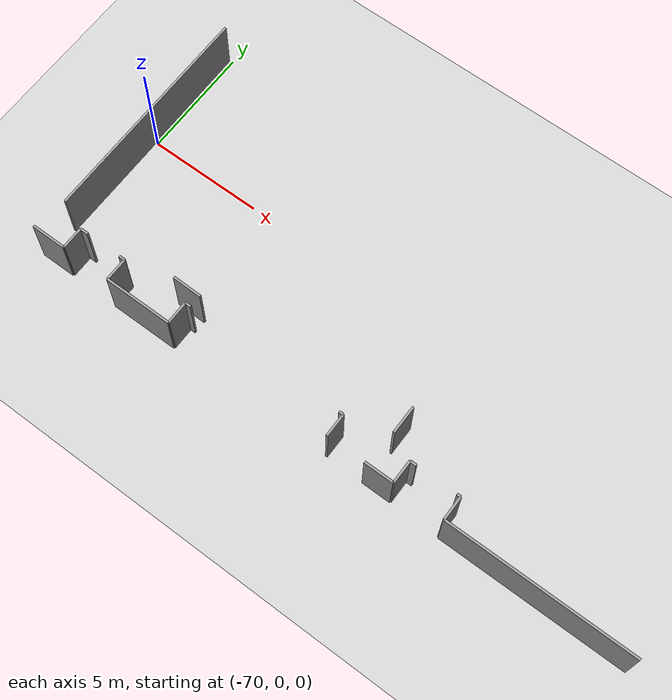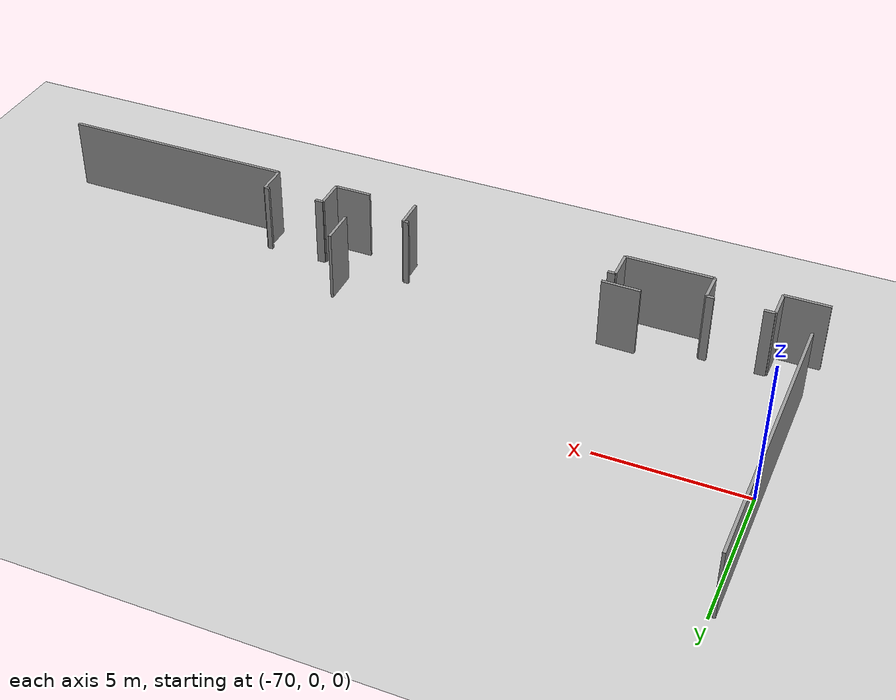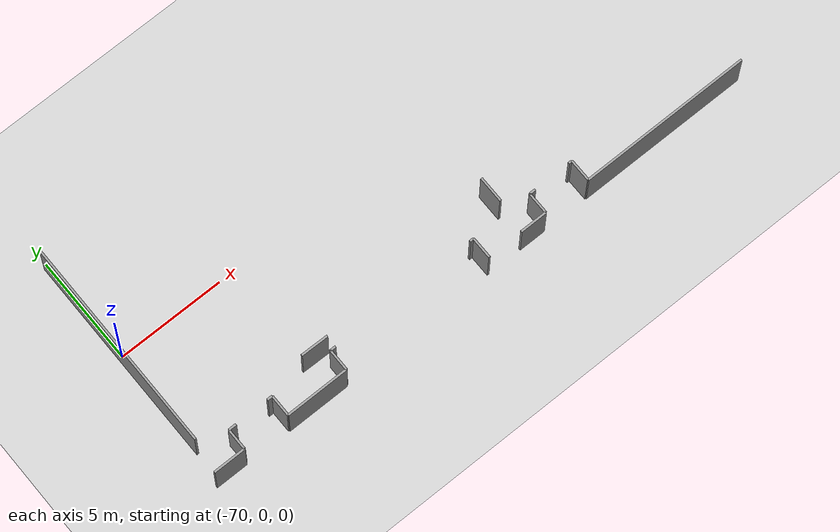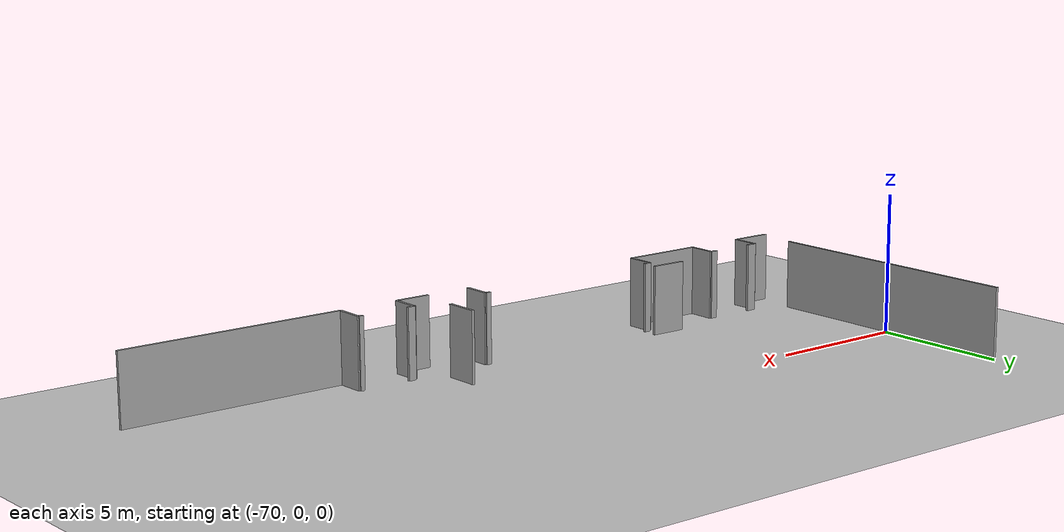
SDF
<sdf version="1.6">
 <world name="default">
  <model name="ground_plane">
   <static>1</static>
   <link name="link">
    <collision name="collision">
     <geometry><plane><normal>0 0 1</normal><size>100 100</size></plane></geometry>
     <surface><friction><ode><mu>100</mu><mu2>50</mu2></ode></friction></surface>
    </collision>
    <visual name="visual">
     <cast_shadows>0</cast_shadows>
     <geometry><plane><normal>0 0 1</normal><size>100 100</size></plane></geometry>
     <material>
      <script><uri>file://media/materials/scripts/gazebo.material</uri><name>Gazebo/Grey</name></script>
     </material>
    </visual>
   </link>
  </model>
  <model name="50055639">
   <static>1</static>
   <link name="Wall_0">
    <collision name="Wall_0_Collision">
     <geometry><box><size>9.98781401135 0.1 2.5</size></box></geometry>
     <pose>4.99390700567 0 1.25 0 0 0</pose>
    </collision>
    <visual name="Wall_0_Visual">
     <pose>4.99390700567 0 1.25 0 0 0</pose>
     <geometry><box><size>9.98781401135 0.1 2.5</size></box></geometry>
     <material>
      <script><uri>file://media/materials/scripts/gazebo.material</uri><name>Gazebo/Grey</name></script>
      <ambient>1 1 1 1</ambient>
     </material>
    </visual>
    <pose>0.262633442923 -25.9998730626 0 0 0 1.57079632679</pose>
   </link>
   <link name="Wall_15">
    <collision name="Wall_15_Collision">
     <geometry><box><size>1.30010702863 0.1 2.5</size></box></geometry>
     <pose>0.650053514316 0 1.25 0 0 0</pose>
    </collision>
    <visual name="Wall_15_Visual">
     <pose>0.650053514316 0 1.25 0 0 0</pose>
     <geometry><box><size>1.30010702863 0.1 2.5</size></box></geometry>
     <material>
      <script><uri>file://media/materials/scripts/gazebo.material</uri><name>Gazebo/Grey</name></script>
      <ambient>1 1 1 1</ambient>
     </material>
    </visual>
    <pose>6.96746594905 -25.9921298823 0 0 0 3.12684906813</pose>
   </link>
   <link name="Wall_16">
    <collision name="Wall_16_Collision">
     <geometry><box><size>1.21859886518 0.1 2.5</size></box></geometry>
     <pose>0.60929943259 0 1.25 0 0 0</pose>
    </collision>
    <visual name="Wall_16_Visual">
     <pose>0.60929943259 0 1.25 0 0 0</pose>
     <geometry><box><size>1.21859886518 0.1 2.5</size></box></geometry>
     <material>
      <script><uri>file://media/materials/scripts/gazebo.material</uri><name>Gazebo/Grey</name></script>
      <ambient>1 1 1 1</ambient>
     </material>
    </visual>
    <pose>15.9090620597 -25.9954302543 0 0 0 1.57079632679</pose>
   </link>
   <link name="Wall_26">
    <collision name="Wall_26_Collision">
     <geometry><box><size>1.52248695718 0.1 2.5</size></box></geometry>
     <pose>0.761243478592 0 1.25 0 0 0</pose>
    </collision>
    <visual name="Wall_26_Visual">
     <pose>0.761243478592 0 1.25 0 0 0</pose>
     <geometry><box><size>1.52248695718 0.1 2.5</size></box></geometry>
     <material>
      <script><uri>file://media/materials/scripts/gazebo.material</uri><name>Gazebo/Grey</name></script>
      <ambient>1 1 1 1</ambient>
     </material>
    </visual>
    <pose>0.0 -27.5255334543 0 0 0 0.0</pose>
   </link>
   <link name="Wall_27">
    <collision name="Wall_27_Collision">
     <geometry><box><size>0.987699767705 0.1 2.5</size></box></geometry>
     <pose>0.493849883852 0 1.25 0 0 0</pose>
    </collision>
    <visual name="Wall_27_Visual">
     <pose>0.493849883852 0 1.25 0 0 0</pose>
     <geometry><box><size>0.987699767705 0.1 2.5</size></box></geometry>
     <material>
      <script><uri>file://media/materials/scripts/gazebo.material</uri><name>Gazebo/Grey</name></script>
      <ambient>1 1 1 1</ambient>
     </material>
    </visual>
    <pose>1.52248695718 -27.5255334543 0 0 0 1.57079632679</pose>
   </link>
   <link name="Wall_28">
    <collision name="Wall_28_Collision">
     <geometry><box><size>0.362279287627 0.1 2.5</size></box></geometry>
     <pose>0.181139643814 0 1.25 0 0 0</pose>
    </collision>
    <visual name="Wall_28_Visual">
     <pose>0.181139643814 0 1.25 0 0 0</pose>
     <geometry><box><size>0.362279287627 0.1 2.5</size></box></geometry>
     <material>
      <script><uri>file://media/materials/scripts/gazebo.material</uri><name>Gazebo/Grey</name></script>
      <ambient>1 1 1 1</ambient>
     </material>
    </visual>
    <pose>1.52248695718 -26.5378336866 0 0 0 0.0</pose>
   </link>
   <link name="Wall_29">
    <collision name="Wall_29_Collision">
     <geometry><box><size>0.256286573833 0.1 2.5</size></box></geometry>
     <pose>0.128143286917 0 1.25 0 0 0</pose>
    </collision>
    <visual name="Wall_29_Visual">
     <pose>0.128143286917 0 1.25 0 0 0</pose>
     <geometry><box><size>0.256286573833 0.1 2.5</size></box></geometry>
     <material>
      <script><uri>file://media/materials/scripts/gazebo.material</uri><name>Gazebo/Grey</name></script>
      <ambient>1 1 1 1</ambient>
     </material>
    </visual>
    <pose>3.46196321355 -26.5378336866 0 0 0 0.0</pose>
   </link>
   <link name="Wall_30">
    <collision name="Wall_30_Collision">
     <geometry><box><size>1.0044555021 0.1 2.5</size></box></geometry>
     <pose>0.50222775105 0 1.25 0 0 0</pose>
    </collision>
    <visual name="Wall_30_Visual">
     <pose>0.50222775105 0 1.25 0 0 0</pose>
     <geometry><box><size>1.0044555021 0.1 2.5</size></box></geometry>
     <material>
      <script><uri>file://media/materials/scripts/gazebo.material</uri><name>Gazebo/Grey</name></script>
      <ambient>1 1 1 1</ambient>
     </material>
    </visual>
    <pose>3.71824978738 -26.5378336866 0 0 0 -1.57079632679</pose>
   </link>
   <link name="Wall_31">
    <collision name="Wall_31_Collision">
     <geometry><box><size>2.96868454791 0.1 2.5</size></box></geometry>
     <pose>1.48434227396 0 1.25 0 0 0</pose>
    </collision>
    <visual name="Wall_31_Visual">
     <pose>1.48434227396 0 1.25 0 0 0</pose>
     <geometry><box><size>2.96868454791 0.1 2.5</size></box></geometry>
     <material>
      <script><uri>file://media/materials/scripts/gazebo.material</uri><name>Gazebo/Grey</name></script>
      <ambient>1 1 1 1</ambient>
     </material>
    </visual>
    <pose>3.71824978738 -27.5422891887 0 0 0 0.0</pose>
   </link>
   <link name="Wall_32">
    <collision name="Wall_32_Collision">
     <geometry><box><size>1.00344000305 0.1 2.5</size></box></geometry>
     <pose>0.501720001523 0 1.25 0 0 0</pose>
    </collision>
    <visual name="Wall_32_Visual">
     <pose>0.501720001523 0 1.25 0 0 0</pose>
     <geometry><box><size>1.00344000305 0.1 2.5</size></box></geometry>
     <material>
      <script><uri>file://media/materials/scripts/gazebo.material</uri><name>Gazebo/Grey</name></script>
      <ambient>1 1 1 1</ambient>
     </material>
    </visual>
    <pose>6.68693433529 -27.5422891887 0 0 0 1.57079632679</pose>
   </link>
   <link name="Wall_33">
    <collision name="Wall_33_Collision">
     <geometry><box><size>0.258698384087 0.1 2.5</size></box></geometry>
     <pose>0.129349192044 0 1.25 0 0 0</pose>
    </collision>
    <visual name="Wall_33_Visual">
     <pose>0.129349192044 0 1.25 0 0 0</pose>
     <geometry><box><size>0.258698384087 0.1 2.5</size></box></geometry>
     <material>
      <script><uri>file://media/materials/scripts/gazebo.material</uri><name>Gazebo/Grey</name></script>
      <ambient>1 1 1 1</ambient>
     </material>
    </visual>
    <pose>6.68693433529 -26.5388491857 0 0 0 0.0</pose>
   </link>
   <link name="Wall_34">
    <collision name="Wall_34_Collision">
     <geometry><box><size>0.189263636248 0.1 2.5</size></box></geometry>
     <pose>0.0946318181241 0 1.25 0 0 0</pose>
    </collision>
    <visual name="Wall_34_Visual">
     <pose>0.0946318181241 0 1.25 0 0 0</pose>
     <geometry><box><size>0.189263636248 0.1 2.5</size></box></geometry>
     <material>
      <script><uri>file://media/materials/scripts/gazebo.material</uri><name>Gazebo/Grey</name></script>
      <ambient>1 1 1 1</ambient>
     </material>
    </visual>
    <pose>13.8625775905 -26.5388491857 0 0 0 0.0</pose>
   </link>
   <link name="Wall_35">
    <collision name="Wall_35_Collision">
     <geometry><box><size>1.00826362355 0.1 2.5</size></box></geometry>
     <pose>0.504131811777 0 1.25 0 0 0</pose>
    </collision>
    <visual name="Wall_35_Visual">
     <pose>0.504131811777 0 1.25 0 0 0</pose>
     <geometry><box><size>1.00826362355 0.1 2.5</size></box></geometry>
     <material>
      <script><uri>file://media/materials/scripts/gazebo.material</uri><name>Gazebo/Grey</name></script>
      <ambient>1 1 1 1</ambient>
     </material>
    </visual>
    <pose>14.0518412267 -26.5388491857 0 0 0 -1.57079632679</pose>
   </link>
   <link name="Wall_45">
    <collision name="Wall_45_Collision">
     <geometry><box><size>1.27940187106 0.1 2.5</size></box></geometry>
     <pose>0.639700935529 0 1.25 0 0 0</pose>
    </collision>
    <visual name="Wall_45_Visual">
     <pose>0.639700935529 0 1.25 0 0 0</pose>
     <geometry><box><size>1.27940187106 0.1 2.5</size></box></geometry>
     <material>
      <script><uri>file://media/materials/scripts/gazebo.material</uri><name>Gazebo/Grey</name></script>
      <ambient>1 1 1 1</ambient>
     </material>
    </visual>
    <pose>15.7196714861 -27.5233755189 0 0 0 0.0</pose>
   </link>
   <link name="Wall_46">
    <collision name="Wall_46_Collision">
     <geometry><box><size>1.00978687214 0.1 2.5</size></box></geometry>
     <pose>0.504893436068 0 1.25 0 0 0</pose>
    </collision>
    <visual name="Wall_46_Visual">
     <pose>0.504893436068 0 1.25 0 0 0</pose>
     <geometry><box><size>1.00978687214 0.1 2.5</size></box></geometry>
     <material>
      <script><uri>file://media/materials/scripts/gazebo.material</uri><name>Gazebo/Grey</name></script>
      <ambient>1 1 1 1</ambient>
     </material>
    </visual>
    <pose>16.9990733571 -27.5233755189 0 0 0 1.57079632679</pose>
   </link>
   <link name="Wall_47">
    <collision name="Wall_47_Collision">
     <geometry><box><size>0.284085860445 0.1 2.5</size></box></geometry>
     <pose>0.142042930223 0 1.25 0 0 0</pose>
    </collision>
    <visual name="Wall_47_Visual">
     <pose>0.142042930223 0 1.25 0 0 0</pose>
     <geometry><box><size>0.284085860445 0.1 2.5</size></box></geometry>
     <material>
      <script><uri>file://media/materials/scripts/gazebo.material</uri><name>Gazebo/Grey</name></script>
      <ambient>1 1 1 1</ambient>
     </material>
    </visual>
    <pose>16.9990733571 -26.5135886467 0 0 0 0.0</pose>
   </link>
   <link name="Wall_48">
    <collision name="Wall_48_Collision">
     <geometry><box><size>0.165653283235 0.1 2.5</size></box></geometry>
     <pose>0.0828266416177 0 1.25 0 0 0</pose>
    </collision>
    <visual name="Wall_48_Visual">
     <pose>0.0828266416177 0 1.25 0 0 0</pose>
     <geometry><box><size>0.165653283235 0.1 2.5</size></box></geometry>
     <material>
      <script><uri>file://media/materials/scripts/gazebo.material</uri><name>Gazebo/Grey</name></script>
      <ambient>1 1 1 1</ambient>
     </material>
    </visual>
    <pose>19.0383223956 -26.5135886467 0 0 0 0.0</pose>
   </link>
   <link name="Wall_49">
    <collision name="Wall_49_Collision">
     <geometry><box><size>1.0316201018 0.1 2.5</size></box></geometry>
     <pose>0.515810050902 0 1.25 0 0 0</pose>
    </collision>
    <visual name="Wall_49_Visual">
     <pose>0.515810050902 0 1.25 0 0 0</pose>
     <geometry><box><size>1.0316201018 0.1 2.5</size></box></geometry>
     <material>
      <script><uri>file://media/materials/scripts/gazebo.material</uri><name>Gazebo/Grey</name></script>
      <ambient>1 1 1 1</ambient>
     </material>
    </visual>
    <pose>19.2039756788 -26.5135886467 0 0 0 -1.57079632679</pose>
   </link>
   <link name="Wall_50">
    <collision name="Wall_50_Collision">
     <geometry><box><size>8.1019053301 0.1 2.5</size></box></geometry>
     <pose>4.05095266505 0 1.25 0 0 0</pose>
    </collision>
    <visual name="Wall_50_Visual">
     <pose>4.05095266505 0 1.25 0 0 0</pose>
     <geometry><box><size>8.1019053301 0.1 2.5</size></box></geometry>
     <material>
      <script><uri>file://media/materials/scripts/gazebo.material</uri><name>Gazebo/Grey</name></script>
      <ambient>1 1 1 1</ambient>
     </material>
    </visual>
    <pose>19.2039756788 -27.5452087485 0 0 0 0.0</pose>
   </link>
   <pose>-70.4 20.8983593343 0 0 0 0</pose>
  </model>
 </world>
</sdf>
